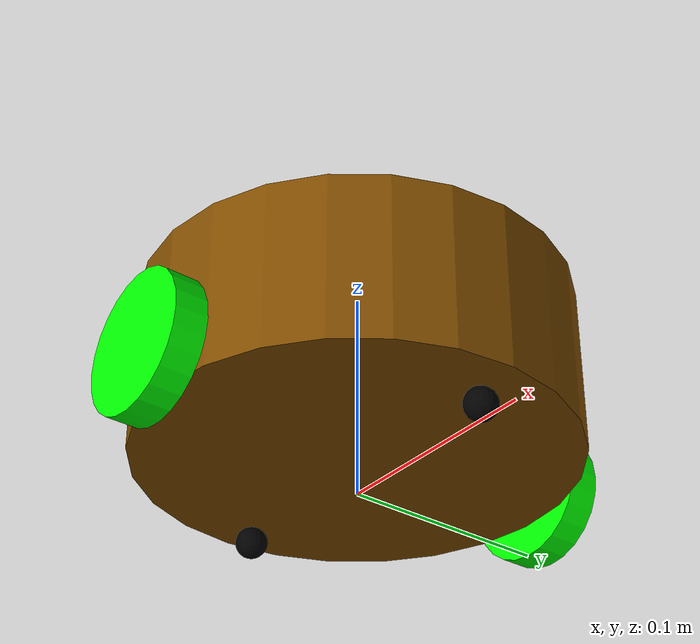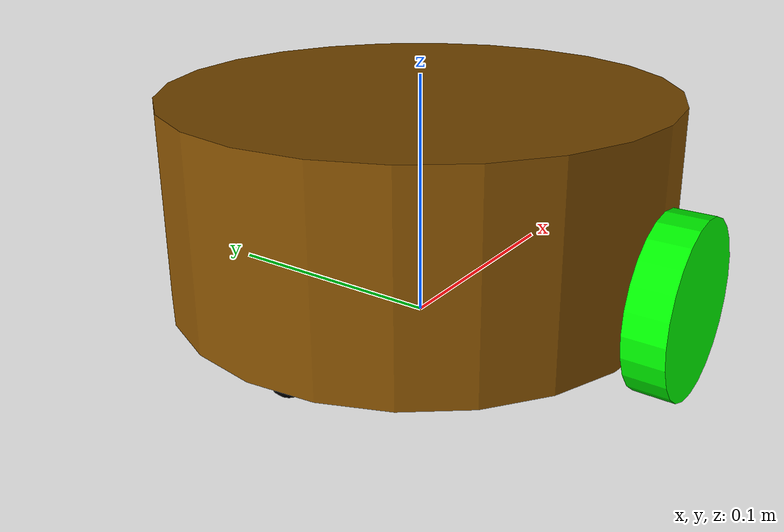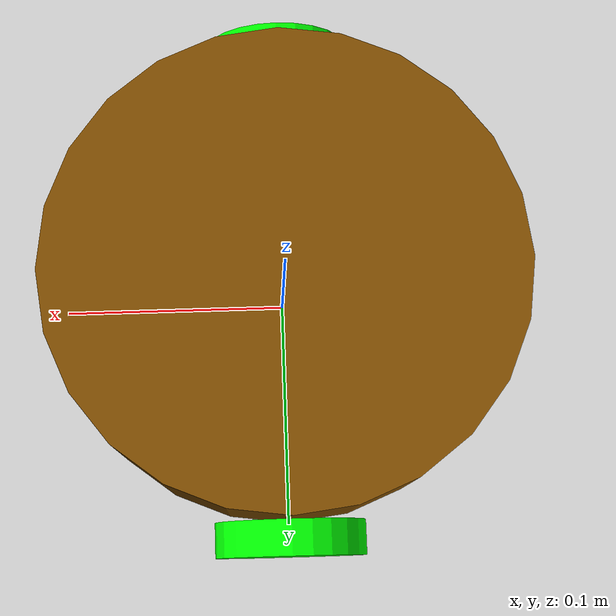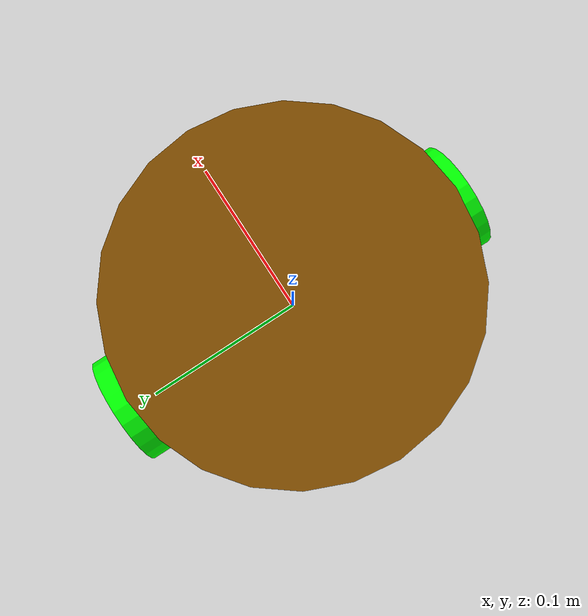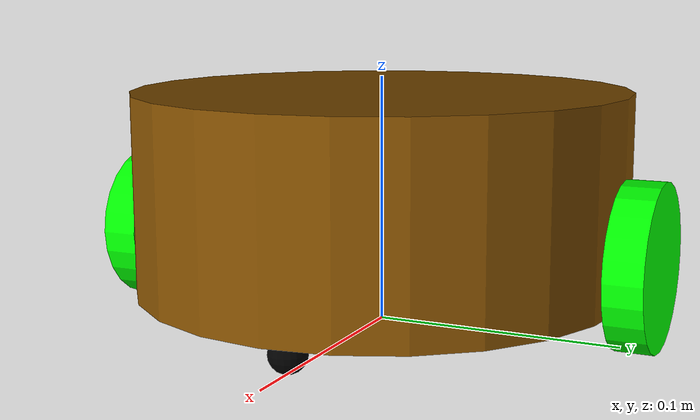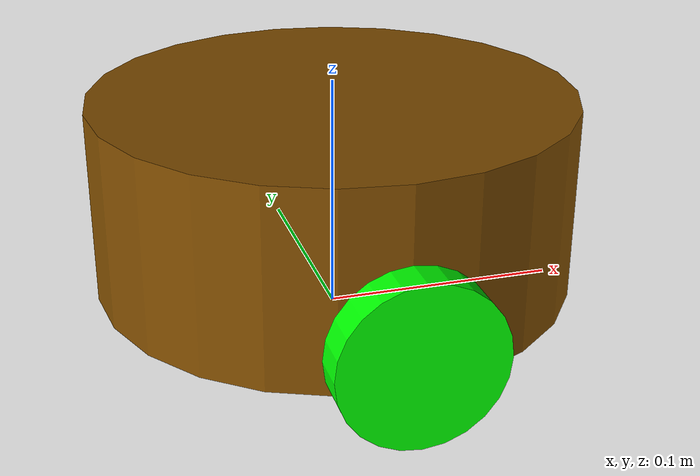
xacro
<robot name="mycar" xmlns:xacro="http://wiki.ros.org/xacro">
    <!-- 设置 base_footprint  -->
    <xacro:property name="footprint_radius" value="0.001" />
    <link name="base_footprint">
        <visual>
            <geometry>
                <sphere radius="${footprint_radius}" />
            </geometry>
        </visual>
    </link>

    <!-- 添加底盘 -->
    <xacro:property name="base_radius" value="0.1" />
    <xacro:property name="base_length" value="0.08" />
    <xacro:property name="base_mass" value="0.5" />
    <xacro:property name="lidi" value="0.015" />
    <xacro:property name="base_joint_z" value="${base_length / 2 + lidi}" />
    <link name="base_link">
        <visual>
            <geometry>
                <cylinder radius="${base_radius}" length="${base_length}" />
            </geometry>
            <origin xyz="0 0 0" rpy="0 0 0" />
            <material name="yellow">
                <color rgba="0.5 0.3 0.0 1" />
            </material>
        </visual>
        <collision>
            <geometry>
                <cylinder radius="${base_radius}" length="${base_length}" />
            </geometry>
            <origin xyz="0 0 0" rpy="0 0 0" />
        </collision>
        <xacro:cylinder_inertial_matrix m="${base_mass}" r="${base_radius}" h="${base_length}" />
    </link>
    <!-- 底盘与原点连接的关节 -->
    <joint name="base_link2base_footprint" type="fixed">
        <parent link="base_footprint" />
        <child link="base_link" />
        <origin xyz="0 0 ${base_joint_z}" />
    </joint>
    <gazebo reference="base_link">
        <material>Gazebo/Yellow</material>
    </gazebo>

    <!-- 添加驱动轮 -->
    <xacro:property name="wheel_radius" value="0.0325" /><!-- 半径 -->
    <xacro:property name="wheel_length" value="0.015" /><!-- 宽度 -->
    <xacro:property name="wheel_mass" value="0.05" /><!-- 质量 -->
    <xacro:property name="PI" value="3.1415926"/>
    <xacro:property name="wheel_base_z" value="${-(base_length/2+lidi-wheel_radius)}"/>
    <xacro:macro name="add_wheels" params="wheel_name wheel_flag">
        <link name="${wheel_name}">
            <visual>
                <geometry>
                    <cylinder radius="${wheel_radius}" length="${wheel_length}" />
                </geometry>
                <origin xyz="0 0 0" rpy="${PI/2} 0 0" />
                <material name="green">
                    <color rgba="0 1.0 0 1.0" />
                </material>
            </visual>
            <collision>
                <geometry>
                    <cylinder radius="${wheel_radius}" length="${wheel_length}" />
                </geometry>
                <origin xyz="0 0 0" rpy="${PI/2} 0 0" />
            </collision>
            <xacro:cylinder_inertial_matrix m="${wheel_mass}" r="${wheel_radius}" h="${wheel_length}" />
        </link>
        <joint name="${wheel_name}2base_link" type="continuous">
            <parent link="base_link" />
            <child link="${wheel_name}" />
            <origin xyz="0 ${wheel_flag * 0.1075} ${wheel_base_z}" />
            <axis xyz="0 1 0" />
        </joint>
        <gazebo reference="${wheel_name}">
            <material>Gazebo/Red</material>
        </gazebo>
    </xacro:macro>
    <xacro:add_wheels wheel_name="left_wheel"  wheel_flag="1" />
    <xacro:add_wheels wheel_name="right_wheel" wheel_flag="-1" />

    <!-- 添加万向轮(支撑轮) -->
    <xacro:property name="swheel_radius" value="0.0075" />
    <xacro:property name="swheel_mass" value="0.03" />
    <xacro:property name="swheel_base_z" value="${-(base_length/2+lidi-swheel_radius)}"/>
    <xacro:macro name="sadd_sheels" params="swheel_name swheel_flag">
        <link name="${swheel_name}">
        <visual>
            <geometry>
                <sphere radius="${swheel_radius}" />
            </geometry>
            <origin xyz="0 0 0" rpy="0 0 0" />
            <material name="black">
                <color rgba="0.0 0.0 0.0 1.0" />
            </material>
        </visual>
        <collision>
            <geometry>
                <sphere radius="${swheel_radius}" />
            </geometry>
            <origin xyz="0 0 0" rpy="0 0 0" />
        </collision>
        <xacro:sphere_inertial_matrix m="${swheel_mass}" r="${swheel_radius}"/>
        </link>

        <joint name="${swheel_name}2base_link" type="continuous">
            <parent link="base_link" />
            <child link="${swheel_name}" />
            <origin xyz="${swheel_flag*0.08} 0 ${swheel_base_z}" />
            <axis xyz="1 1 1" />
        </joint>
        <gazebo reference="${swheel_name}">
            <material>Gazebo/Red</material>
        </gazebo>
    </xacro:macro>
    <xacro:sadd_sheels swheel_name="front_wheel"  swheel_flag="1" />
    <xacro:sadd_sheels swheel_name="back_wheel"  swheel_flag="-1" />

</robot>
